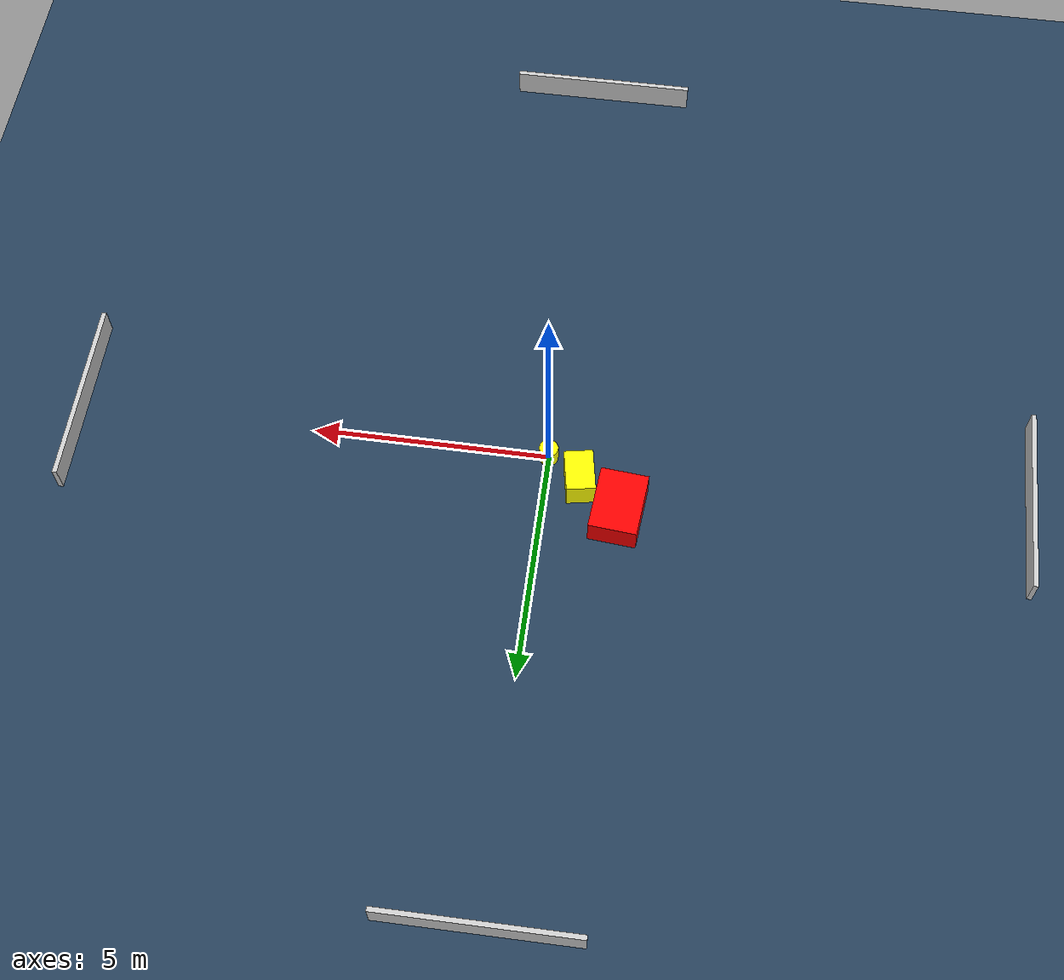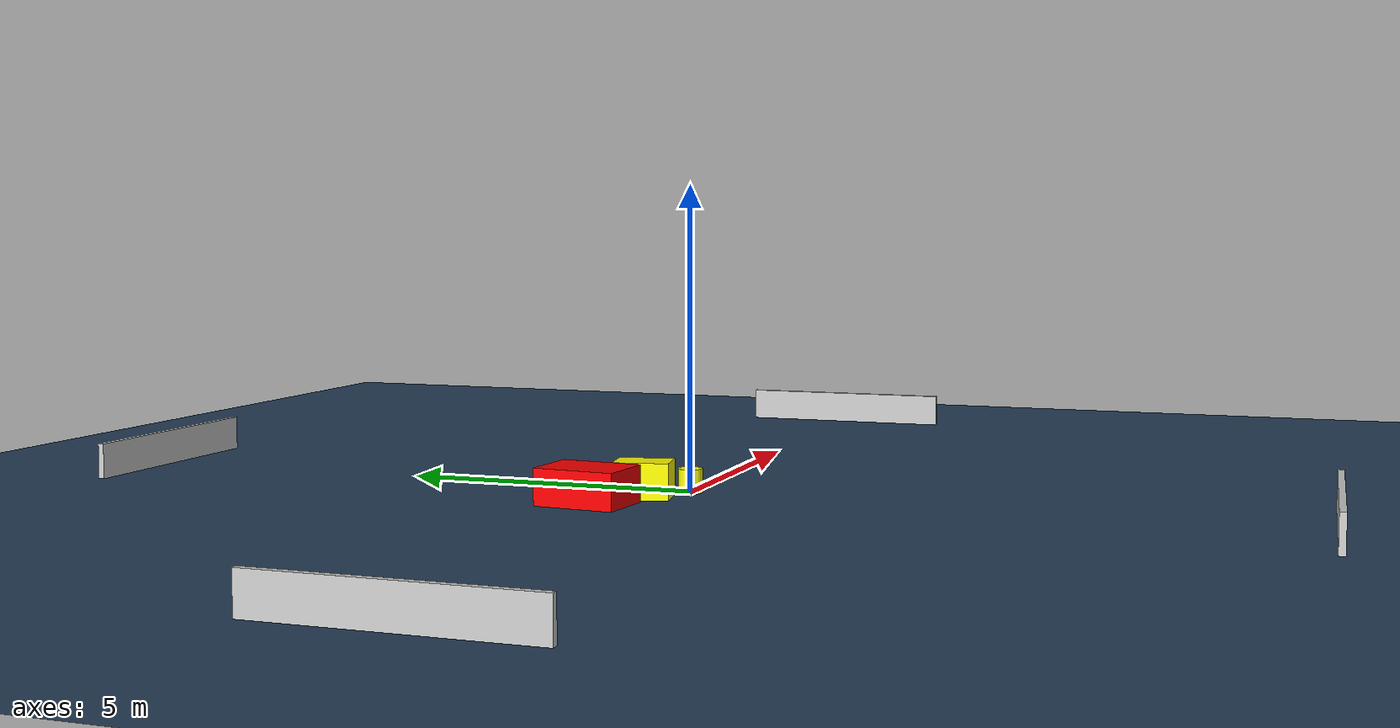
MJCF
<?xml version="1.0" ?>
<mujoco model="generated_environment">
  <option timestep="0.01" integrator="RK4" cone="elliptic"/>
  <default>
    <geom density="1"/>
  </default>
  <asset>
    <texture builtin="gradient" height="3072" name="skybox" rgb1="0.3 0.5 0.7" rgb2="0 0 0" type="skybox" width="512"/>
    <texture builtin="checker" height="300" name="groundplane" rgb1="0.2 0.3 0.4" rgb2="0.1 0.2 0.3" type="2d" width="300"/>
    <material name="groundplane" reflectance="0.2" texrepeat="5 5" texture="groundplane"/>
  </asset>
  <worldbody>
    <light dir="0 0 -1" directional="true" pos="0 0 1.5"/>
    <geom condim="3" friction="0.5 0.005 0.001" material="groundplane" name="floor" pos="0 0 0" size="0 0 0.05" type="plane"/>
    <body name="walls">
      <geom name="wall_1" condim="4" pos="-10.0 0.0 0.3" rgba="0.800000011920929 0.800000011920929 0.800000011920929 1.0" size="0.05 2.0 0.3" type="box"/>
      <geom name="wall_2" condim="4" pos="10.0 0.0 0.3" rgba="0.800000011920929 0.800000011920929 0.800000011920929 1.0" size="0.05 2.0 0.3" type="box"/>
      <geom name="wall_3" condim="4" pos="0.0 -10.0 0.3" rgba="0.800000011920929 0.800000011920929 0.800000011920929 1.0" size="2.0 0.05 0.3" type="box"/>
      <geom name="wall_4" condim="4" pos="0.0 10.0 0.3" rgba="0.800000011920929 0.800000011920929 0.800000011920929 1.0" size="2.0 0.05 0.3" type="box"/>
    </body>
    <body name="robot">
      <joint name="joint_x" type="slide" pos="0 0 0" axis="1 0 0"/>
      <joint name="joint_y" type="slide" pos="0 0 0" axis="0 1 0"/>
      <geom name="robot" type="cylinder" pos="0.0 0.0 0.2" size="0.2 0.2 0.0" mass="5.0" friction="1.0 0.005 0.0001" condim="4" rgba="1.0 1.0 0.0 1.0"/>
    </body>
    <body name="obstacle_1_movable">
      <geom name="obstacle_1_movable" condim="4" pos="-0.7118977078021723 0.5373413992753485 0.3" euler="0 0 280.4674330748968" friction="0.0 0.005 0.001" rgba="1.0 1.0 0.0 1.0" size="0.4510450018816609 0.3043453374689066 0.3" type="box" mass="0.1"/>
      <joint type="free"/>
    </body>
    <body name="obstacle_2_static">
      <geom name="obstacle_2_static" condim="4" pos="-1.5874824216544778 1.1556099975824297 0.3" euler="0 0 354.9060705239845" friction="0.0 0.005 0.001" rgba="1.0 0.0 0.0 1.0" size="0.5046003727079138 0.6852277704581631 0.3" type="box"/>
    </body>
  </worldbody>
  <actuator>
    <motor name="actuator_x" joint="joint_x" gear="1" ctrlrange="-1 1"/>
    <motor name="actuator_y" joint="joint_y" gear="1" ctrlrange="-1 1"/>
  </actuator>
</mujoco>
